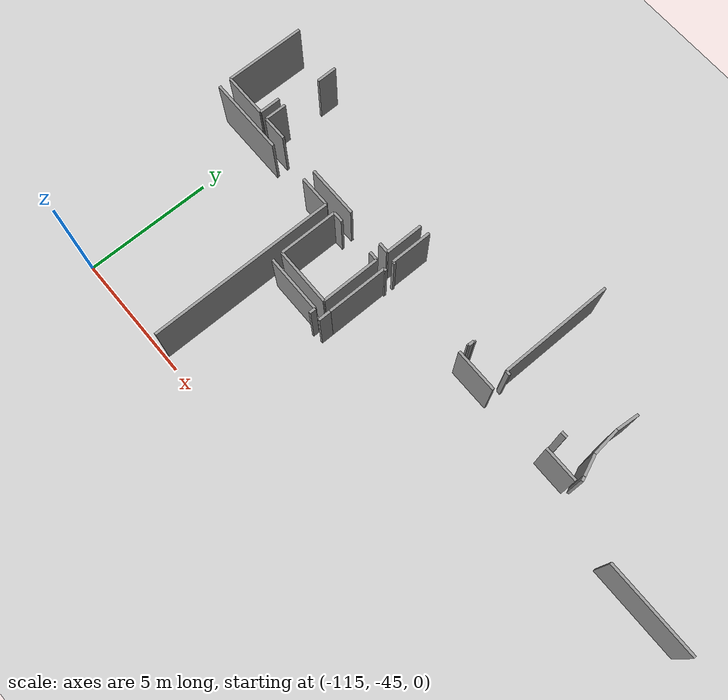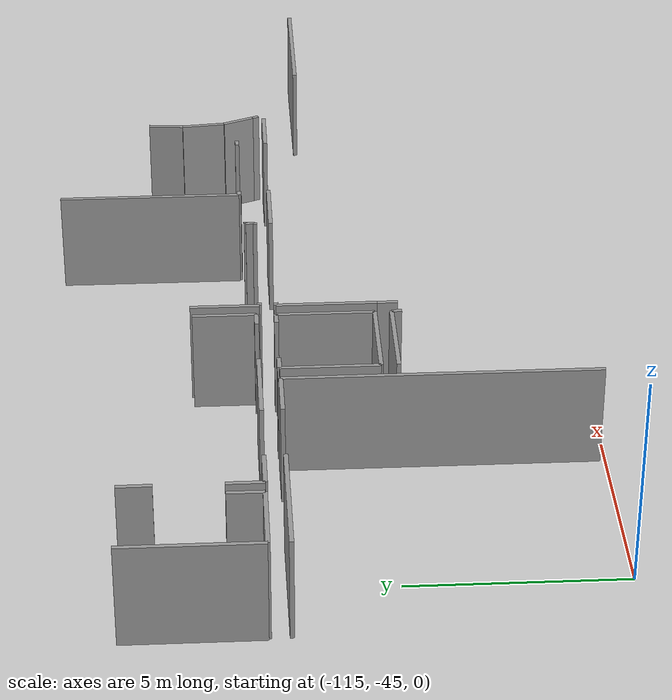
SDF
<sdf version="1.6">
 <world name="default">
  <model name="ground_plane">
   <static>1</static>
   <link name="link">
    <collision name="collision">
     <geometry><plane><normal>0 0 1</normal><size>100 100</size></plane></geometry>
     <surface><friction><ode><mu>100</mu><mu2>50</mu2></ode></friction></surface>
    </collision>
    <visual name="visual">
     <cast_shadows>0</cast_shadows>
     <geometry><plane><normal>0 0 1</normal><size>100 100</size></plane></geometry>
     <material>
      <script><uri>file://media/materials/scripts/gazebo.material</uri><name>Gazebo/Grey</name></script>
     </material>
    </visual>
   </link>
  </model>
  <model name="0510035519_A_40_1_102">
   <static>1</static>
   <link name="Wall_359">
    <collision name="Wall_359_Collision">
     <geometry><box><size>1.48862625492 0.1 2.5</size></box></geometry>
     <pose>0.744313127462 0 1.25 0 0 0</pose>
    </collision>
    <visual name="Wall_359_Visual">
     <pose>0.744313127462 0 1.25 0 0 0</pose>
     <geometry><box><size>1.48862625492 0.1 2.5</size></box></geometry>
     <material>
      <script><uri>file://media/materials/scripts/gazebo.material</uri><name>Gazebo/Grey</name></script>
      <ambient>1 1 1 1</ambient>
     </material>
    </visual>
    <pose>8.70377430423 -104.365993138 0 0 0 -1.57079632679</pose>
   </link>
   <link name="Wall_360">
    <collision name="Wall_360_Collision">
     <geometry><box><size>0.409454822722 0.1 2.5</size></box></geometry>
     <pose>0.204727411361 0 1.25 0 0 0</pose>
    </collision>
    <visual name="Wall_360_Visual">
     <pose>0.204727411361 0 1.25 0 0 0</pose>
     <geometry><box><size>0.409454822722 0.1 2.5</size></box></geometry>
     <material>
      <script><uri>file://media/materials/scripts/gazebo.material</uri><name>Gazebo/Grey</name></script>
      <ambient>1 1 1 1</ambient>
     </material>
    </visual>
    <pose>8.70377430423 -105.854619393 0 0 0 3.14159265359</pose>
   </link>
   <link name="Wall_361">
    <collision name="Wall_361_Collision">
     <geometry><box><size>2.04066590418 0.1 2.5</size></box></geometry>
     <pose>1.02033295209 0 1.25 0 0 0</pose>
    </collision>
    <visual name="Wall_361_Visual">
     <pose>1.02033295209 0 1.25 0 0 0</pose>
     <geometry><box><size>2.04066590418 0.1 2.5</size></box></geometry>
     <material>
      <script><uri>file://media/materials/scripts/gazebo.material</uri><name>Gazebo/Grey</name></script>
      <ambient>1 1 1 1</ambient>
     </material>
    </visual>
    <pose>6.80620155039 -105.854619393 0 0 0 3.14159265359</pose>
   </link>
   <link name="Wall_362">
    <collision name="Wall_362_Collision">
     <geometry><box><size>0.975473376541 0.1 2.5</size></box></geometry>
     <pose>0.48773668827 0 1.25 0 0 0</pose>
    </collision>
    <visual name="Wall_362_Visual">
     <pose>0.48773668827 0 1.25 0 0 0</pose>
     <geometry><box><size>0.975473376541 0.1 2.5</size></box></geometry>
     <material>
      <script><uri>file://media/materials/scripts/gazebo.material</uri><name>Gazebo/Grey</name></script>
      <ambient>1 1 1 1</ambient>
     </material>
    </visual>
    <pose>3.0779006227 -105.854619393 0 0 0 3.14159265359</pose>
   </link>
   <link name="Wall_363">
    <collision name="Wall_363_Collision">
     <geometry><box><size>0.841784216546 0.1 2.5</size></box></geometry>
     <pose>0.420892108273 0 1.25 0 0 0</pose>
    </collision>
    <visual name="Wall_363_Visual">
     <pose>0.420892108273 0 1.25 0 0 0</pose>
     <geometry><box><size>0.841784216546 0.1 2.5</size></box></geometry>
     <material>
      <script><uri>file://media/materials/scripts/gazebo.material</uri><name>Gazebo/Grey</name></script>
      <ambient>1 1 1 1</ambient>
     </material>
    </visual>
    <pose>2.10242724616 -105.854619393 0 0 0 1.57079632679</pose>
   </link>
   <link name="Wall_364">
    <collision name="Wall_364_Collision">
     <geometry><box><size>0.784639942144 0.1 2.5</size></box></geometry>
     <pose>0.392319971072 0 1.25 0 0 0</pose>
    </collision>
    <visual name="Wall_364_Visual">
     <pose>0.392319971072 0 1.25 0 0 0</pose>
     <geometry><box><size>0.784639942144 0.1 2.5</size></box></geometry>
     <material>
      <script><uri>file://media/materials/scripts/gazebo.material</uri><name>Gazebo/Grey</name></script>
      <ambient>1 1 1 1</ambient>
     </material>
    </visual>
    <pose>2.10242724616 -103.492184522 0 0 0 1.58116200671</pose>
   </link>
   <link name="Wall_365">
    <collision name="Wall_365_Collision">
     <geometry><box><size>3.15846994536 0.1 2.5</size></box></geometry>
     <pose>1.57923497268 0 1.25 0 0 0</pose>
    </collision>
    <visual name="Wall_365_Visual">
     <pose>1.57923497268 0 1.25 0 0 0</pose>
     <geometry><box><size>3.15846994536 0.1 2.5</size></box></geometry>
     <material>
      <script><uri>file://media/materials/scripts/gazebo.material</uri><name>Gazebo/Grey</name></script>
      <ambient>1 1 1 1</ambient>
     </material>
    </visual>
    <pose>0.0223662472995 -105.840132164 0 0 0 1.57079632679</pose>
   </link>
   <link name="Wall_368">
    <collision name="Wall_368_Collision">
     <geometry><box><size>0.823992883467 0.1 2.5</size></box></geometry>
     <pose>0.411996441733 0 1.25 0 0 0</pose>
    </collision>
    <visual name="Wall_368_Visual">
     <pose>0.411996441733 0 1.25 0 0 0</pose>
     <geometry><box><size>0.823992883467 0.1 2.5</size></box></geometry>
     <material>
      <script><uri>file://media/materials/scripts/gazebo.material</uri><name>Gazebo/Grey</name></script>
      <ambient>1 1 1 1</ambient>
     </material>
    </visual>
    <pose>1.76642521286 -105.019697547 0 0 0 -1.57079632679</pose>
   </link>
   <link name="Wall_369">
    <collision name="Wall_369_Collision">
     <geometry><box><size>1.74406259538 0.1 2.5</size></box></geometry>
     <pose>0.872031297692 0 1.25 0 0 0</pose>
    </collision>
    <visual name="Wall_369_Visual">
     <pose>0.872031297692 0 1.25 0 0 0</pose>
     <geometry><box><size>1.74406259538 0.1 2.5</size></box></geometry>
     <material>
      <script><uri>file://media/materials/scripts/gazebo.material</uri><name>Gazebo/Grey</name></script>
      <ambient>1 1 1 1</ambient>
     </material>
    </visual>
    <pose>1.76642521286 -105.843690431 0 0 0 3.13955243491</pose>
   </link>
   <link name="Wall_370">
    <collision name="Wall_370_Collision">
     <geometry><box><size>2.28516965307 0.1 2.5</size></box></geometry>
     <pose>1.14258482653 0 1.25 0 0 0</pose>
    </collision>
    <visual name="Wall_370_Visual">
     <pose>1.14258482653 0 1.25 0 0 0</pose>
     <geometry><box><size>2.28516965307 0.1 2.5</size></box></geometry>
     <material>
      <script><uri>file://media/materials/scripts/gazebo.material</uri><name>Gazebo/Grey</name></script>
      <ambient>1 1 1 1</ambient>
     </material>
    </visual>
    <pose>6.43029609861 -108.59626382 0 0 0 1.57079632679</pose>
   </link>
   <link name="Wall_371">
    <collision name="Wall_371_Collision">
     <geometry><box><size>0.416063032151 0.1 2.5</size></box></geometry>
     <pose>0.208031516076 0 1.25 0 0 0</pose>
    </collision>
    <visual name="Wall_371_Visual">
     <pose>0.208031516076 0 1.25 0 0 0</pose>
     <geometry><box><size>0.416063032151 0.1 2.5</size></box></geometry>
     <material>
      <script><uri>file://media/materials/scripts/gazebo.material</uri><name>Gazebo/Grey</name></script>
      <ambient>1 1 1 1</ambient>
     </material>
    </visual>
    <pose>6.43029609861 -106.311094167 0 0 0 0.0</pose>
   </link>
   <link name="Wall_372">
    <collision name="Wall_372_Collision">
     <geometry><box><size>0.346930995044 0.1 2.5</size></box></geometry>
     <pose>0.173465497522 0 1.25 0 0 0</pose>
    </collision>
    <visual name="Wall_372_Visual">
     <pose>0.173465497522 0 1.25 0 0 0</pose>
     <geometry><box><size>0.346930995044 0.1 2.5</size></box></geometry>
     <material>
      <script><uri>file://media/materials/scripts/gazebo.material</uri><name>Gazebo/Grey</name></script>
      <ambient>1 1 1 1</ambient>
     </material>
    </visual>
    <pose>8.33041047147 -106.311094167 0 0 0 0.0</pose>
   </link>
   <link name="Wall_373">
    <collision name="Wall_373_Collision">
     <geometry><box><size>2.29025289109 0.1 2.5</size></box></geometry>
     <pose>1.14512644555 0 1.25 0 0 0</pose>
    </collision>
    <visual name="Wall_373_Visual">
     <pose>1.14512644555 0 1.25 0 0 0</pose>
     <geometry><box><size>2.29025289109 0.1 2.5</size></box></geometry>
     <material>
      <script><uri>file://media/materials/scripts/gazebo.material</uri><name>Gazebo/Grey</name></script>
      <ambient>1 1 1 1</ambient>
     </material>
    </visual>
    <pose>8.67734146651 -106.311094167 0 0 0 -1.57079632679</pose>
   </link>
   <link name="Wall_374">
    <collision name="Wall_374_Collision">
     <geometry><box><size>2.24705111751 0.1 2.5</size></box></geometry>
     <pose>1.12352555876 0 1.25 0 0 0</pose>
    </collision>
    <visual name="Wall_374_Visual">
     <pose>1.12352555876 0 1.25 0 0 0</pose>
     <geometry><box><size>2.24705111751 0.1 2.5</size></box></geometry>
     <material>
      <script><uri>file://media/materials/scripts/gazebo.material</uri><name>Gazebo/Grey</name></script>
      <ambient>1 1 1 1</ambient>
     </material>
    </visual>
    <pose>8.67734146651 -108.601347058 0 0 0 3.13933046991</pose>
   </link>
   <link name="Wall_376">
    <collision name="Wall_376_Collision">
     <geometry><box><size>3.06824247045 0.1 2.5</size></box></geometry>
     <pose>1.53412123523 0 1.25 0 0 0</pose>
    </collision>
    <visual name="Wall_376_Visual">
     <pose>1.53412123523 0 1.25 0 0 0</pose>
     <geometry><box><size>3.06824247045 0.1 2.5</size></box></geometry>
     <material>
      <script><uri>file://media/materials/scripts/gazebo.material</uri><name>Gazebo/Grey</name></script>
      <ambient>1 1 1 1</ambient>
     </material>
    </visual>
    <pose>0.0188079806837 -106.321514805 0 0 0 0.0</pose>
   </link>
   <link name="Wall_377">
    <collision name="Wall_377_Collision">
     <geometry><box><size>1.2352268395 0.1 2.5</size></box></geometry>
     <pose>0.617613419748 0 1.25 0 0 0</pose>
    </collision>
    <visual name="Wall_377_Visual">
     <pose>0.617613419748 0 1.25 0 0 0</pose>
     <geometry><box><size>1.2352268395 0.1 2.5</size></box></geometry>
     <material>
      <script><uri>file://media/materials/scripts/gazebo.material</uri><name>Gazebo/Grey</name></script>
      <ambient>1 1 1 1</ambient>
     </material>
    </visual>
    <pose>4.77417715085 -106.321514805 0 0 0 0.0</pose>
   </link>
   <link name="Wall_378">
    <collision name="Wall_378_Collision">
     <geometry><box><size>7.27970517219 0.1 2.5</size></box></geometry>
     <pose>3.6398525861 0 1.25 0 0 0</pose>
    </collision>
    <visual name="Wall_378_Visual">
     <pose>3.6398525861 0 1.25 0 0 0</pose>
     <geometry><box><size>7.27970517219 0.1 2.5</size></box></geometry>
     <material>
      <script><uri>file://media/materials/scripts/gazebo.material</uri><name>Gazebo/Grey</name></script>
      <ambient>1 1 1 1</ambient>
     </material>
    </visual>
    <pose>6.00940399034 -106.321514805 0 0 0 -1.57079632679</pose>
   </link>
   <link name="Wall_423">
    <collision name="Wall_423_Collision">
     <geometry><box><size>0.0617613419748 0.1 2.5</size></box></geometry>
     <pose>0.0308806709874 0 1.25 0 0 0</pose>
    </collision>
    <visual name="Wall_423_Visual">
     <pose>0.0308806709874 0 1.25 0 0 0</pose>
     <geometry><box><size>0.0617613419748 0.1 2.5</size></box></geometry>
     <material>
      <script><uri>file://media/materials/scripts/gazebo.material</uri><name>Gazebo/Grey</name></script>
      <ambient>1 1 1 1</ambient>
     </material>
    </visual>
    <pose>12.9830982336 -105.716863642 0 0 0 3.14159265359</pose>
   </link>
   <link name="Wall_424">
    <collision name="Wall_424_Collision">
     <geometry><box><size>0.223408311094 0.1 2.5</size></box></geometry>
     <pose>0.111704155547 0 1.25 0 0 0</pose>
    </collision>
    <visual name="Wall_424_Visual">
     <pose>0.111704155547 0 1.25 0 0 0</pose>
     <geometry><box><size>0.223408311094 0.1 2.5</size></box></geometry>
     <material>
      <script><uri>file://media/materials/scripts/gazebo.material</uri><name>Gazebo/Grey</name></script>
      <ambient>1 1 1 1</ambient>
     </material>
    </visual>
    <pose>12.9213368916 -105.716863642 0 0 0 -1.57079632679</pose>
   </link>
   <link name="Wall_425">
    <collision name="Wall_425_Collision">
     <geometry><box><size>0.0617613419748 0.1 2.5</size></box></geometry>
     <pose>0.0308806709874 0 1.25 0 0 0</pose>
    </collision>
    <visual name="Wall_425_Visual">
     <pose>0.0308806709874 0 1.25 0 0 0</pose>
     <geometry><box><size>0.0617613419748 0.1 2.5</size></box></geometry>
     <material>
      <script><uri>file://media/materials/scripts/gazebo.material</uri><name>Gazebo/Grey</name></script>
      <ambient>1 1 1 1</ambient>
     </material>
    </visual>
    <pose>12.9213368916 -105.940271953 0 0 0 3.14159265359</pose>
   </link>
   <link name="Wall_426">
    <collision name="Wall_426_Collision">
     <geometry><box><size>0.108527131783 0.1 2.5</size></box></geometry>
     <pose>0.0542635658915 0 1.25 0 0 0</pose>
    </collision>
    <visual name="Wall_426_Visual">
     <pose>0.0542635658915 0 1.25 0 0 0</pose>
     <geometry><box><size>0.108527131783 0.1 2.5</size></box></geometry>
     <material>
      <script><uri>file://media/materials/scripts/gazebo.material</uri><name>Gazebo/Grey</name></script>
      <ambient>1 1 1 1</ambient>
     </material>
    </visual>
    <pose>9.19735671623 -105.940271953 0 0 0 3.14159265359</pose>
   </link>
   <link name="Wall_427">
    <collision name="Wall_427_Collision">
     <geometry><box><size>1.62104460541 0.1 2.5</size></box></geometry>
     <pose>0.810522302707 0 1.25 0 0 0</pose>
    </collision>
    <visual name="Wall_427_Visual">
     <pose>0.810522302707 0 1.25 0 0 0</pose>
     <geometry><box><size>1.62104460541 0.1 2.5</size></box></geometry>
     <material>
      <script><uri>file://media/materials/scripts/gazebo.material</uri><name>Gazebo/Grey</name></script>
      <ambient>1 1 1 1</ambient>
     </material>
    </visual>
    <pose>9.08882958445 -105.940271953 0 0 0 1.57079632679</pose>
   </link>
   <link name="Wall_436">
    <collision name="Wall_436_Collision">
     <geometry><box><size>2.26686999619 0.1 2.5</size></box></geometry>
     <pose>1.13343499809 0 1.25 0 0 0</pose>
    </collision>
    <visual name="Wall_436_Visual">
     <pose>1.13343499809 0 1.25 0 0 0</pose>
     <geometry><box><size>2.26686999619 0.1 2.5</size></box></geometry>
     <material>
      <script><uri>file://media/materials/scripts/gazebo.material</uri><name>Gazebo/Grey</name></script>
      <ambient>1 1 1 1</ambient>
     </material>
    </visual>
    <pose>6.43029609861 -108.996314652 0 0 0 0.0</pose>
   </link>
   <link name="Wall_437">
    <collision name="Wall_437_Collision">
     <geometry><box><size>0.238658025162 0.1 2.5</size></box></geometry>
     <pose>0.119329012581 0 1.25 0 0 0</pose>
    </collision>
    <visual name="Wall_437_Visual">
     <pose>0.119329012581 0 1.25 0 0 0</pose>
     <geometry><box><size>0.238658025162 0.1 2.5</size></box></geometry>
     <material>
      <script><uri>file://media/materials/scripts/gazebo.material</uri><name>Gazebo/Grey</name></script>
      <ambient>1 1 1 1</ambient>
     </material>
    </visual>
    <pose>8.6971660948 -108.996314652 0 0 0 -1.57079632679</pose>
   </link>
   <link name="Wall_472">
    <collision name="Wall_472_Collision">
     <geometry><box><size>4.45317066972 0.1 2.5</size></box></geometry>
     <pose>2.22658533486 0 1.25 0 0 0</pose>
    </collision>
    <visual name="Wall_472_Visual">
     <pose>2.22658533486 0 1.25 0 0 0</pose>
     <geometry><box><size>4.45317066972 0.1 2.5</size></box></geometry>
     <material>
      <script><uri>file://media/materials/scripts/gazebo.material</uri><name>Gazebo/Grey</name></script>
      <ambient>1 1 1 1</ambient>
     </material>
    </visual>
    <pose>14.3631973567 -105.583682806 0 0 0 1.57079632679</pose>
   </link>
   <link name="Wall_475">
    <collision name="Wall_475_Collision">
     <geometry><box><size>0.236116406151 0.1 2.5</size></box></geometry>
     <pose>0.118058203075 0 1.25 0 0 0</pose>
    </collision>
    <visual name="Wall_475_Visual">
     <pose>0.118058203075 0 1.25 0 0 0</pose>
     <geometry><box><size>0.236116406151 0.1 2.5</size></box></geometry>
     <material>
      <script><uri>file://media/materials/scripts/gazebo.material</uri><name>Gazebo/Grey</name></script>
      <ambient>1 1 1 1</ambient>
     </material>
    </visual>
    <pose>17.2164188588 -105.595628415 0 0 0 3.14159265359</pose>
   </link>
   <link name="Wall_476">
    <collision name="Wall_476_Collision">
     <geometry><box><size>0.170960487132 0.1 2.5</size></box></geometry>
     <pose>0.0854802435658 0 1.25 0 0 0</pose>
    </collision>
    <visual name="Wall_476_Visual">
     <pose>0.0854802435658 0 1.25 0 0 0</pose>
     <geometry><box><size>0.170960487132 0.1 2.5</size></box></geometry>
     <material>
      <script><uri>file://media/materials/scripts/gazebo.material</uri><name>Gazebo/Grey</name></script>
      <ambient>1 1 1 1</ambient>
     </material>
    </visual>
    <pose>14.5337399924 -105.595628415 0 0 0 3.07166216071</pose>
   </link>
   <link name="Wall_477">
    <collision name="Wall_477_Collision">
     <geometry><box><size>0.820526025008 0.1 2.5</size></box></geometry>
     <pose>0.410263012504 0 1.25 0 0 0</pose>
    </collision>
    <visual name="Wall_477_Visual">
     <pose>0.410263012504 0 1.25 0 0 0</pose>
     <geometry><box><size>0.820526025008 0.1 2.5</size></box></geometry>
     <material>
      <script><uri>file://media/materials/scripts/gazebo.material</uri><name>Gazebo/Grey</name></script>
      <ambient>1 1 1 1</ambient>
     </material>
    </visual>
    <pose>18.4841784217 -106.030499428 0 0 0 1.95665209205</pose>
   </link>
   <link name="Wall_478">
    <collision name="Wall_478_Collision">
     <geometry><box><size>1.08512003036 0.1 2.5</size></box></geometry>
     <pose>0.54256001518 0 1.25 0 0 0</pose>
    </collision>
    <visual name="Wall_478_Visual">
     <pose>0.54256001518 0 1.25 0 0 0</pose>
     <geometry><box><size>1.08512003036 0.1 2.5</size></box></geometry>
     <material>
      <script><uri>file://media/materials/scripts/gazebo.material</uri><name>Gazebo/Grey</name></script>
      <ambient>1 1 1 1</ambient>
     </material>
    </visual>
    <pose>18.1753717118 -105.270301182 0 0 0 1.66368281506</pose>
   </link>
   <link name="Wall_479">
    <collision name="Wall_479_Collision">
     <geometry><box><size>0.871372644321 0.1 2.5</size></box></geometry>
     <pose>0.43568632216 0 1.25 0 0 0</pose>
    </collision>
    <visual name="Wall_479_Visual">
     <pose>0.43568632216 0 1.25 0 0 0</pose>
     <geometry><box><size>0.871372644321 0.1 2.5</size></box></geometry>
     <material>
      <script><uri>file://media/materials/scripts/gazebo.material</uri><name>Gazebo/Grey</name></script>
      <ambient>1 1 1 1</ambient>
     </material>
    </visual>
    <pose>18.0747235989 -104.18985894 0 0 0 1.48230185292</pose>
   </link>
   <link name="Wall_495">
    <collision name="Wall_495_Collision">
     <geometry><box><size>0.16547189053 0.1 2.5</size></box></geometry>
     <pose>0.082735945265 0 1.25 0 0 0</pose>
    </collision>
    <visual name="Wall_495_Visual">
     <pose>0.082735945265 0 1.25 0 0 0</pose>
     <geometry><box><size>0.16547189053 0.1 2.5</size></box></geometry>
     <material>
      <script><uri>file://media/materials/scripts/gazebo.material</uri><name>Gazebo/Grey</name></script>
      <ambient>1 1 1 1</ambient>
     </material>
    </visual>
    <pose>18.5459397636 -106.184013216 0 0 0 1.95329927855</pose>
   </link>
   <link name="Wall_496">
    <collision name="Wall_496_Collision">
     <geometry><box><size>2.35785995679 0.1 2.5</size></box></geometry>
     <pose>1.1789299784 0 1.25 0 0 0</pose>
    </collision>
    <visual name="Wall_496_Visual">
     <pose>1.1789299784 0 1.25 0 0 0</pose>
     <geometry><box><size>2.35785995679 0.1 2.5</size></box></geometry>
     <material>
      <script><uri>file://media/materials/scripts/gazebo.material</uri><name>Gazebo/Grey</name></script>
      <ambient>1 1 1 1</ambient>
     </material>
    </visual>
    <pose>9.08654212734 -108.683949676 0 0 0 1.57079632679</pose>
   </link>
   <link name="Wall_497">
    <collision name="Wall_497_Collision">
     <geometry><box><size>0.107002160376 0.1 2.5</size></box></geometry>
     <pose>0.0535010801881 0 1.25 0 0 0</pose>
    </collision>
    <visual name="Wall_497_Visual">
     <pose>0.0535010801881 0 1.25 0 0 0</pose>
     <geometry><box><size>0.107002160376 0.1 2.5</size></box></geometry>
     <material>
      <script><uri>file://media/materials/scripts/gazebo.material</uri><name>Gazebo/Grey</name></script>
      <ambient>1 1 1 1</ambient>
     </material>
    </visual>
    <pose>9.08654212734 -106.326089719 0 0 0 0.0</pose>
   </link>
   <link name="Wall_498">
    <collision name="Wall_498_Collision">
     <geometry><box><size>1.67263947134 0.1 2.5</size></box></geometry>
     <pose>0.836319735672 0 1.25 0 0 0</pose>
    </collision>
    <visual name="Wall_498_Visual">
     <pose>0.836319735672 0 1.25 0 0 0</pose>
     <geometry><box><size>1.67263947134 0.1 2.5</size></box></geometry>
     <material>
      <script><uri>file://media/materials/scripts/gazebo.material</uri><name>Gazebo/Grey</name></script>
      <ambient>1 1 1 1</ambient>
     </material>
    </visual>
    <pose>12.8783835303 -106.326089719 0 0 0 0.0</pose>
   </link>
   <link name="Wall_499">
    <collision name="Wall_499_Collision">
     <geometry><box><size>1.35417460923 0.1 2.5</size></box></geometry>
     <pose>0.677087304613 0 1.25 0 0 0</pose>
    </collision>
    <visual name="Wall_499_Visual">
     <pose>0.677087304613 0 1.25 0 0 0</pose>
     <geometry><box><size>1.35417460923 0.1 2.5</size></box></geometry>
     <material>
      <script><uri>file://media/materials/scripts/gazebo.material</uri><name>Gazebo/Grey</name></script>
      <ambient>1 1 1 1</ambient>
     </material>
    </visual>
    <pose>17.054009404 -106.326089719 0 0 0 0.0</pose>
   </link>
   <link name="Wall_501">
    <collision name="Wall_501_Collision">
     <geometry><box><size>3.61443639598 0.1 2.5</size></box></geometry>
     <pose>1.80721819799 0 1.25 0 0 0</pose>
    </collision>
    <visual name="Wall_501_Visual">
     <pose>1.80721819799 0 1.25 0 0 0</pose>
     <geometry><box><size>3.61443639598 0.1 2.5</size></box></geometry>
     <material>
      <script><uri>file://media/materials/scripts/gazebo.material</uri><name>Gazebo/Grey</name></script>
      <ambient>1 1 1 1</ambient>
     </material>
    </visual>
    <pose>20.9294700724 -107.254543144 0 0 0 0.0</pose>
   </link>
   <link name="Wall_513">
    <collision name="Wall_513_Collision">
     <geometry><box><size>0.481891232648 0.1 2.5</size></box></geometry>
     <pose>0.240945616324 0 1.25 0 0 0</pose>
    </collision>
    <visual name="Wall_513_Visual">
     <pose>0.240945616324 0 1.25 0 0 0</pose>
     <geometry><box><size>0.481891232648 0.1 2.5</size></box></geometry>
     <material>
      <script><uri>file://media/materials/scripts/gazebo.material</uri><name>Gazebo/Grey</name></script>
      <ambient>1 1 1 1</ambient>
     </material>
    </visual>
    <pose>9.08603380353 -109.16584064 0 0 0 1.56974147487</pose>
   </link>
   <pose>-116.6 68.721527513 0 0 0 0</pose>
  </model>
 </world>
</sdf>
